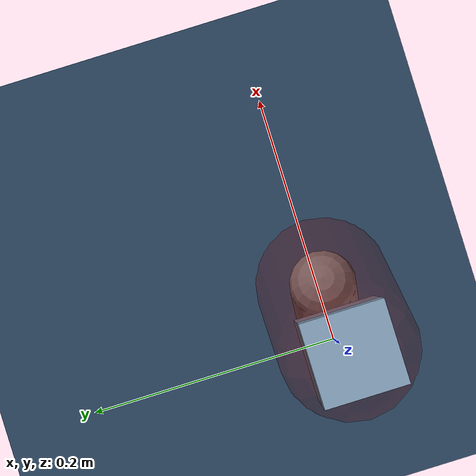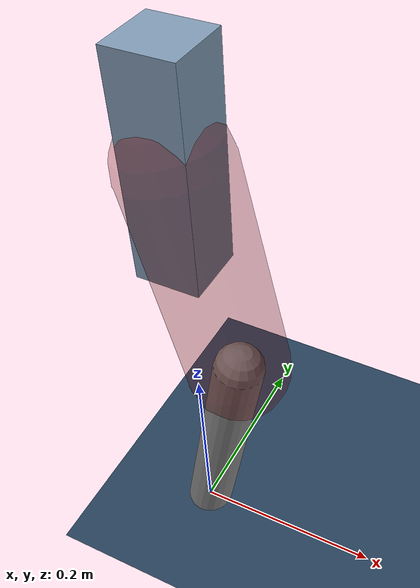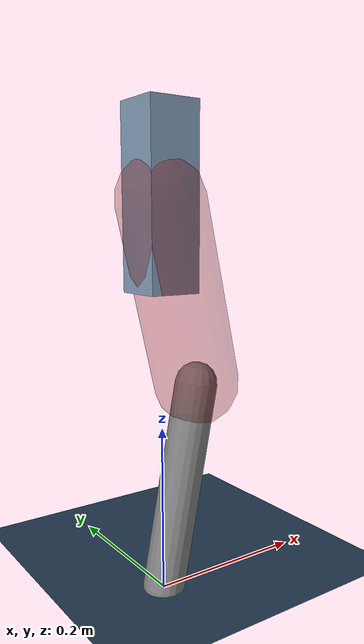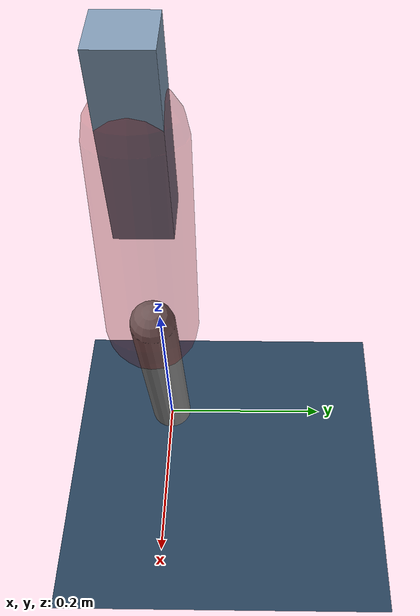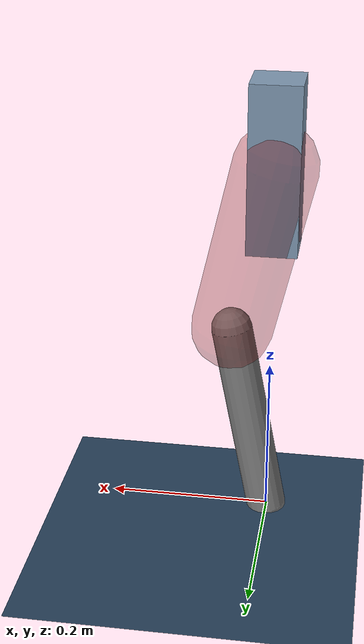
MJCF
<mujoco model="Hopper2D">
	<compiler inertiafromgeom="true" angle="radian" />
	<option timestep="0.001" integrator="implicit" cone="elliptic" solver="Newton" tolerance="1e-10" />

	<default>
		<geom contype="1" conaffinity="1" condim="3" friction="2 0.005 0.0001" solref="0.005 1" />
		<joint limited="true" damping="0.1" />
	</default>

	<asset>
		<texture name="skybox" type="skybox" builtin="gradient" rgb1=".4 .6 .8" rgb2="0 0 0" width="800" height="800" />
		<texture name="grid" type="2d" builtin="checker" rgb1=".1 .2 .3" rgb2=".2 .3 .4" width="300" height="300" mark="edge" markrgb=".2 .3 .4" />
		<material name="ground" texture="grid" texrepeat="1 1" texuniform="true" reflectance="0.1" />
		<material name="leg" rgba="0.5 0.6 0.7 1" />
	</asset>

	<worldbody>

		<geom name="floor" type="plane" size="5 5 0.25" material="ground" />

		<light directional="false" diffuse="0.8 0.8 0.8" specular="0.3 0.3 0.3" pos="0 0 2" dir="0 0 -1" />
		<light mode="targetbodycom" target="base" directional="false" diffuse="0.8 0.8 0.8" specular="0.3 0.3 0.3" pos="0 0 2" dir="0 0 -1" />

		<camera name="fixed" pos="0 -2 1" xyaxes="1 0 0 0 0 1" />
		<camera name="tracking" mode="trackcom" pos="0 -3 1" />

		<body name="root" pos="0 0 0.45614426344785786">
			<joint name="slide_x" type="slide" axis="1 0 0" range="-100 100" />
			<joint name="slide_z" type="slide" axis="0 0 1" range="0 10" />

			<body name="base" pos="0 0 0">
				<geom name="torso" type="box" size="0.03 0.03 0.1" mass="3.069" material="leg" />

				<body name="link1" pos="0 0 0" euler="0 1.3445812001055368 0">
					<joint type="hinge" axis="0 -1 0" pos="0 0 0" name="hinge1" limited="true" range="-3.14 3.14" stiffness="0" damping="0.1" />
					<geom name="thigh" type="capsule" fromto="0 0 0 0.21328028787765635 0 0" size="0.05" rgba="0.5 0 0 0.3" mass="0.7628007196941409" />

					<body name="link2" pos="0.21328028787765635 0 0" euler="0 0.4165420345952398 0">
						<joint type="hinge" axis="0 -1 0" pos="0 0 0" name="hinge2" limited="true" range="-3.14 3.14" stiffness="0" damping="0.1" />
						<geom name="shank" type="capsule" fromto="0 0 0 0.2528639755702015 0 0" size="0.025" mass="0.4448911804561612" />

					</body>
				</body>
			</body>
		</body>
	</worldbody>

	<actuator>
		<motor name="torque1" joint="hinge1" ctrlrange="-89.39739495166414 89.39739495166414" ctrllimited="true" gear="1" />
		<motor name="torque2" joint="hinge2" ctrlrange="-41.0766110929954 41.0766110929954" ctrllimited="true" gear="1" />
	</actuator>
</mujoco>
